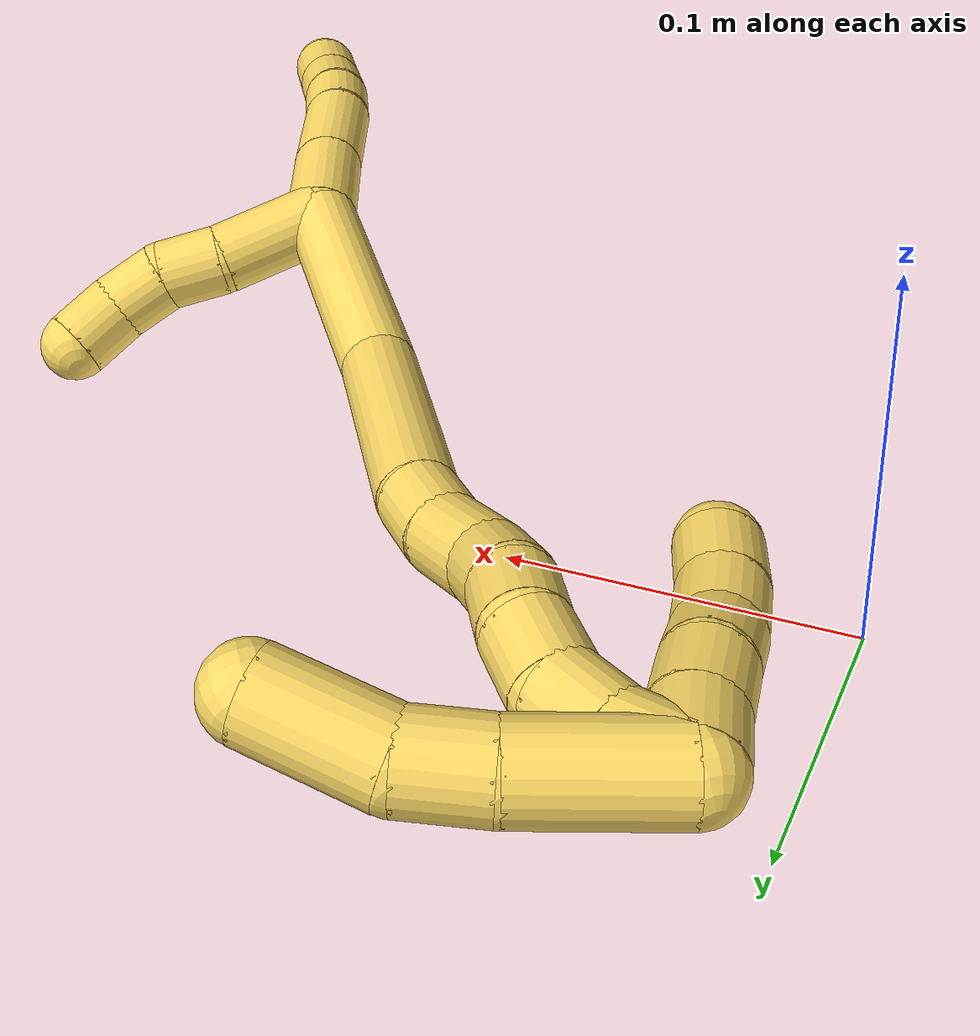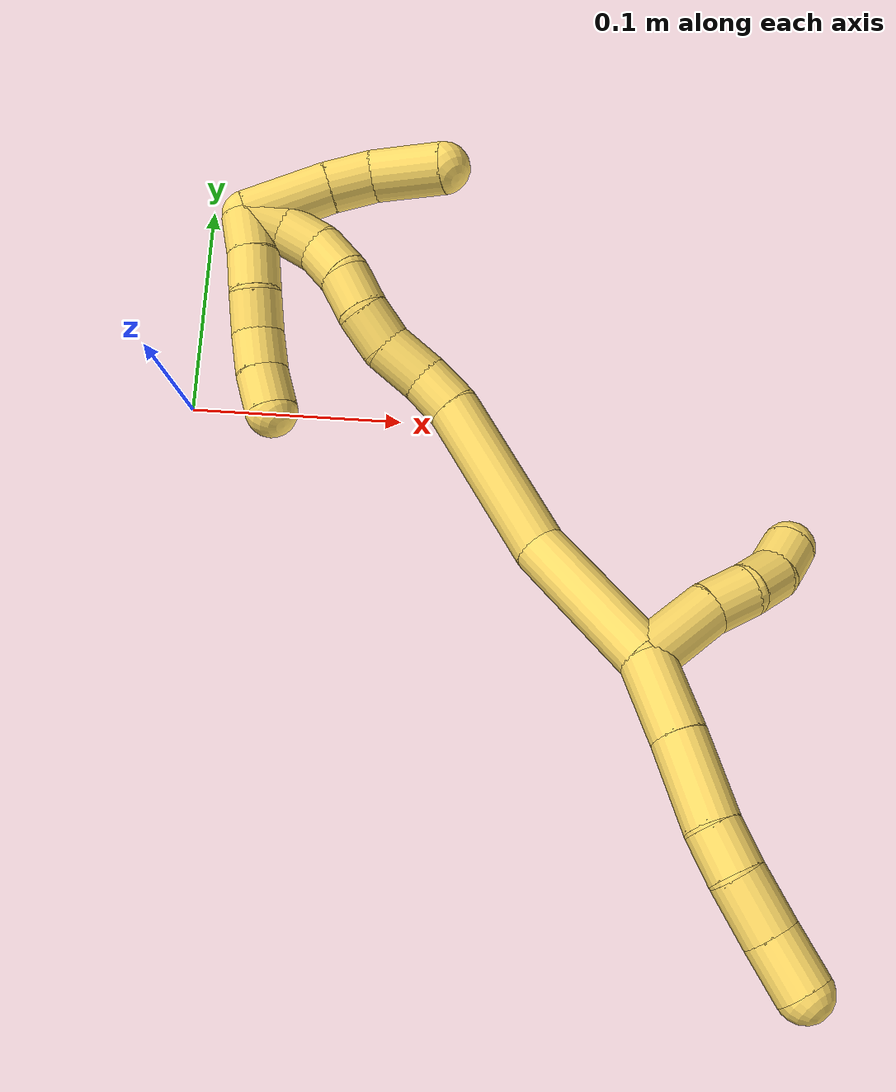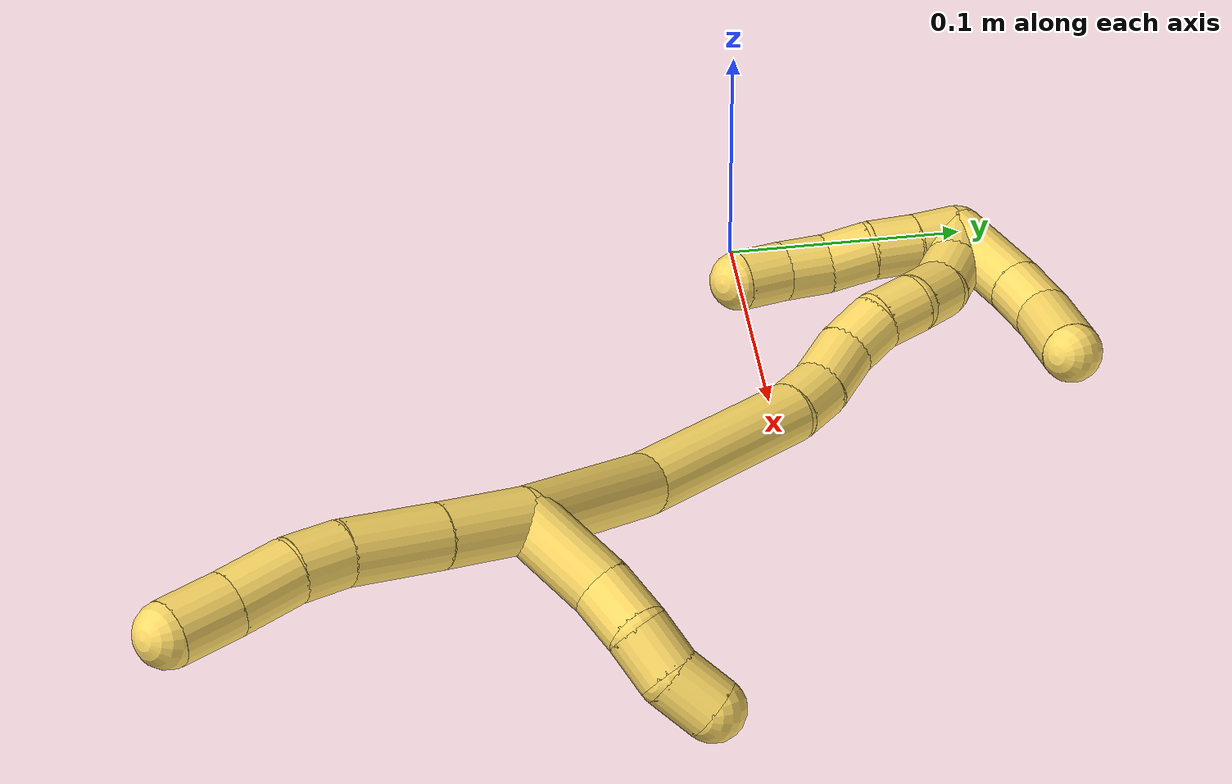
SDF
<sdf version="1.7">
 <world name="default">
  <model name="5">
   <static>0</static>
   <link name="5">
    <collision name="collision-cylinder-e_1_2_8">
     <pose>-0.003518 -0.005043 0.017631 0.278567 -0.189536 -0.02665</pose>
     <geometry><cylinder><radius>0.0125</radius><length>0.037346</length></cylinder></geometry>
     <surface>
      <friction><ode><mu>1.16</mu><mu2>1.16</mu2><slip1>0</slip1><slip2>0</slip2></ode></friction>
      <contact><ode><kp>1e+06</kp><kd>1</kd><max_vel>0</max_vel><min_depth>0.001</min_depth></ode></contact>
     </surface>
    </collision>
    <visual name="visual-cylinder-e_1_2_8">
     <pose>-0.003518 -0.005043 0.017631 0.278567 -0.189536 -0.02665</pose>
     <geometry><cylinder><radius>0.0125</radius><length>0.037346</length></cylinder></geometry>
     <material><ambient>1 0.858824 0.4 1</ambient></material>
    </visual>
    <collision name="collision-cylinder-e_2_8_9">
     <pose>-0.011197 -0.015855 0.053796 0.301799 -0.211174 -0.032227</pose>
     <geometry><cylinder><radius>0.0125</radius><length>0.039703</length></cylinder></geometry>
     <surface>
      <friction><ode><mu>1.16</mu><mu2>1.16</mu2><slip1>0</slip1><slip2>0</slip2></ode></friction>
      <contact><ode><kp>1e+06</kp><kd>1</kd><max_vel>0</max_vel><min_depth>0.001</min_depth></ode></contact>
     </surface>
    </collision>
    <visual name="visual-cylinder-e_2_8_9">
     <pose>-0.011197 -0.015855 0.053796 0.301799 -0.211174 -0.032227</pose>
     <geometry><cylinder><radius>0.0125</radius><length>0.039703</length></cylinder></geometry>
     <material><ambient>1 0.858824 0.4 1</ambient></material>
    </visual>
    <collision name="collision-cylinder-e_3_9_10">
     <pose>-0.016152 -0.024972 0.082286 0.32432 -0.075433 -0.012346</pose>
     <geometry><cylinder><radius>0.0125</radius><length>0.021069</length></cylinder></geometry>
     <surface>
      <friction><ode><mu>1.16</mu><mu2>1.16</mu2><slip1>0</slip1><slip2>0</slip2></ode></friction>
      <contact><ode><kp>1e+06</kp><kd>1</kd><max_vel>0</max_vel><min_depth>0.001</min_depth></ode></contact>
     </surface>
    </collision>
    <visual name="visual-cylinder-e_3_9_10">
     <pose>-0.016152 -0.024972 0.082286 0.32432 -0.075433 -0.012346</pose>
     <geometry><cylinder><radius>0.0125</radius><length>0.021069</length></cylinder></geometry>
     <material><ambient>1 0.858824 0.4 1</ambient></material>
    </visual>
    <collision name="collision-cylinder-e_4_10_11">
     <pose>-0.016188 -0.033778 0.104458 0.420239 0.056591 0.012072</pose>
     <geometry><cylinder><radius>0.0125</radius><length>0.026802</length></cylinder></geometry>
     <surface>
      <friction><ode><mu>1.16</mu><mu2>1.16</mu2><slip1>0</slip1><slip2>0</slip2></ode></friction>
      <contact><ode><kp>1e+06</kp><kd>1</kd><max_vel>0</max_vel><min_depth>0.001</min_depth></ode></contact>
     </surface>
    </collision>
    <visual name="visual-cylinder-e_4_10_11">
     <pose>-0.016188 -0.033778 0.104458 0.420239 0.056591 0.012072</pose>
     <geometry><cylinder><radius>0.0125</radius><length>0.026802</length></cylinder></geometry>
     <material><ambient>1 0.858824 0.4 1</ambient></material>
    </visual>
    <collision name="collision-cylinder-e_5_11_6">
     <pose>-0.014943 -0.043607 0.128417 0.356291 0.038818 0.00699</pose>
     <geometry><cylinder><radius>0.0125</radius><length>0.025081</length></cylinder></geometry>
     <surface>
      <friction><ode><mu>1.16</mu><mu2>1.16</mu2><slip1>0</slip1><slip2>0</slip2></ode></friction>
      <contact><ode><kp>1e+06</kp><kd>1</kd><max_vel>0</max_vel><min_depth>0.001</min_depth></ode></contact>
     </surface>
    </collision>
    <visual name="visual-cylinder-e_5_11_6">
     <pose>-0.014943 -0.043607 0.128417 0.356291 0.038818 0.00699</pose>
     <geometry><cylinder><radius>0.0125</radius><length>0.025081</length></cylinder></geometry>
     <material><ambient>1 0.858824 0.4 1</ambient></material>
    </visual>
    <collision name="collision-cylinder-e_1_2_12">
     <pose>0.018549 0.004399 -0.002629 -2.10947 1.30124 -1.86056</pose>
     <geometry><cylinder><radius>0.0125</radius><length>0.038488</length></cylinder></geometry>
     <surface>
      <friction><ode><mu>1.16</mu><mu2>1.16</mu2><slip1>0</slip1><slip2>0</slip2></ode></friction>
      <contact><ode><kp>1e+06</kp><kd>1</kd><max_vel>0</max_vel><min_depth>0.001</min_depth></ode></contact>
     </surface>
    </collision>
    <visual name="visual-cylinder-e_1_2_12">
     <pose>0.018549 0.004399 -0.002629 -2.10947 1.30124 -1.86056</pose>
     <geometry><cylinder><radius>0.0125</radius><length>0.038488</length></cylinder></geometry>
     <material><ambient>1 0.858824 0.4 1</ambient></material>
    </visual>
    <collision name="collision-cylinder-e_2_12_13">
     <pose>0.047503 0.011117 -0.00453 -1.26682 1.34128 -1.05499</pose>
     <geometry><cylinder><radius>0.0125</radius><length>0.02137</length></cylinder></geometry>
     <surface>
      <friction><ode><mu>1.16</mu><mu2>1.16</mu2><slip1>0</slip1><slip2>0</slip2></ode></friction>
      <contact><ode><kp>1e+06</kp><kd>1</kd><max_vel>0</max_vel><min_depth>0.001</min_depth></ode></contact>
     </surface>
    </collision>
    <visual name="visual-cylinder-e_2_12_13">
     <pose>0.047503 0.011117 -0.00453 -1.26682 1.34128 -1.05499</pose>
     <geometry><cylinder><radius>0.0125</radius><length>0.02137</length></cylinder></geometry>
     <material><ambient>1 0.858824 0.4 1</ambient></material>
    </visual>
    <collision name="collision-cylinder-e_3_13_14">
     <pose>0.067823 0.013184 -0.005264 2.97042 1.4223 2.94307</pose>
     <geometry><cylinder><radius>0.0125</radius><length>0.020051</length></cylinder></geometry>
     <surface>
      <friction><ode><mu>1.16</mu><mu2>1.16</mu2><slip1>0</slip1><slip2>0</slip2></ode></friction>
      <contact><ode><kp>1e+06</kp><kd>1</kd><max_vel>0</max_vel><min_depth>0.001</min_depth></ode></contact>
     </surface>
    </collision>
    <visual name="visual-cylinder-e_3_13_14">
     <pose>0.067823 0.013184 -0.005264 2.97042 1.4223 2.94307</pose>
     <geometry><cylinder><radius>0.0125</radius><length>0.020051</length></cylinder></geometry>
     <material><ambient>1 0.858824 0.4 1</ambient></material>
    </visual>
    <collision name="collision-cylinder-e_4_14_5">
     <pose>0.086699 0.013765 -0.01119 -2.95701 1.10174 -2.8425</pose>
     <geometry><cylinder><radius>0.0125</radius><length>0.020091</length></cylinder></geometry>
     <surface>
      <friction><ode><mu>1.16</mu><mu2>1.16</mu2><slip1>0</slip1><slip2>0</slip2></ode></friction>
      <contact><ode><kp>1e+06</kp><kd>1</kd><max_vel>0</max_vel><min_depth>0.001</min_depth></ode></contact>
     </surface>
    </collision>
    <visual name="visual-cylinder-e_4_14_5">
     <pose>0.086699 0.013765 -0.01119 -2.95701 1.10174 -2.8425</pose>
     <geometry><cylinder><radius>0.0125</radius><length>0.020091</length></cylinder></geometry>
     <material><ambient>1 0.858824 0.4 1</ambient></material>
    </visual>
    <collision name="collision-cylinder-e_1_2_15">
     <pose>-0.000599 -0.001299 -0.037877 3.10731 -0.015809 -0.86419</pose>
     <geometry><cylinder><radius>0.0125</radius><length>0.075807</length></cylinder></geometry>
     <surface>
      <friction><ode><mu>1.16</mu><mu2>1.16</mu2><slip1>0</slip1><slip2>0</slip2></ode></friction>
      <contact><ode><kp>1e+06</kp><kd>1</kd><max_vel>0</max_vel><min_depth>0.001</min_depth></ode></contact>
     </surface>
    </collision>
    <visual name="visual-cylinder-e_1_2_15">
     <pose>-0.000599 -0.001299 -0.037877 3.10731 -0.015809 -0.86419</pose>
     <geometry><cylinder><radius>0.0125</radius><length>0.075807</length></cylinder></geometry>
     <material><ambient>1 0.858824 0.4 1</ambient></material>
    </visual>
    <collision name="collision-cylinder-e_2_15_16">
     <pose>-0.002598 0.009647 -0.113647 -2.82904 -0.035139 0.222127</pose>
     <geometry><cylinder><radius>0.0125</radius><length>0.079695</length></cylinder></geometry>
     <surface>
      <friction><ode><mu>1.16</mu><mu2>1.16</mu2><slip1>0</slip1><slip2>0</slip2></ode></friction>
      <contact><ode><kp>1e+06</kp><kd>1</kd><max_vel>0</max_vel><min_depth>0.001</min_depth></ode></contact>
     </surface>
    </collision>
    <visual name="visual-cylinder-e_2_15_16">
     <pose>-0.002598 0.009647 -0.113647 -2.82904 -0.035139 0.222127</pose>
     <geometry><cylinder><radius>0.0125</radius><length>0.079695</length></cylinder></geometry>
     <material><ambient>1 0.858824 0.4 1</ambient></material>
    </visual>
    <collision name="collision-cylinder-e_3_16_17">
     <pose>-0.006321 0.024223 -0.161141 -2.90347 -0.230934 1.53988</pose>
     <geometry><cylinder><radius>0.0125</radius><length>0.020298</length></cylinder></geometry>
     <surface>
      <friction><ode><mu>1.16</mu><mu2>1.16</mu2><slip1>0</slip1><slip2>0</slip2></ode></friction>
      <contact><ode><kp>1e+06</kp><kd>1</kd><max_vel>0</max_vel><min_depth>0.001</min_depth></ode></contact>
     </surface>
    </collision>
    <visual name="visual-cylinder-e_3_16_17">
     <pose>-0.006321 0.024223 -0.161141 -2.90347 -0.230934 1.53988</pose>
     <geometry><cylinder><radius>0.0125</radius><length>0.020298</length></cylinder></geometry>
     <material><ambient>1 0.858824 0.4 1</ambient></material>
    </visual>
    <collision name="collision-cylinder-e_4_17_18">
     <pose>-0.013676 0.030015 -0.181069 -2.81816 -0.432762 1.86469</pose>
     <geometry><cylinder><radius>0.0125</radius><length>0.023996</length></cylinder></geometry>
     <surface>
      <friction><ode><mu>1.16</mu><mu2>1.16</mu2><slip1>0</slip1><slip2>0</slip2></ode></friction>
      <contact><ode><kp>1e+06</kp><kd>1</kd><max_vel>0</max_vel><min_depth>0.001</min_depth></ode></contact>
     </surface>
    </collision>
    <visual name="visual-cylinder-e_4_17_18">
     <pose>-0.013676 0.030015 -0.181069 -2.81816 -0.432762 1.86469</pose>
     <geometry><cylinder><radius>0.0125</radius><length>0.023996</length></cylinder></geometry>
     <material><ambient>1 0.858824 0.4 1</ambient></material>
    </visual>
    <collision name="collision-cylinder-e_5_18_19">
     <pose>-0.021202 0.038543 -0.199665 -2.59186 -0.251769 0.843657</pose>
     <geometry><cylinder><radius>0.0125</radius><length>0.020028</length></cylinder></geometry>
     <surface>
      <friction><ode><mu>1.16</mu><mu2>1.16</mu2><slip1>0</slip1><slip2>0</slip2></ode></friction>
      <contact><ode><kp>1e+06</kp><kd>1</kd><max_vel>0</max_vel><min_depth>0.001</min_depth></ode></contact>
     </surface>
    </collision>
    <visual name="visual-cylinder-e_5_18_19">
     <pose>-0.021202 0.038543 -0.199665 -2.59186 -0.251769 0.843657</pose>
     <geometry><cylinder><radius>0.0125</radius><length>0.020028</length></cylinder></geometry>
     <material><ambient>1 0.858824 0.4 1</ambient></material>
    </visual>
    <collision name="collision-cylinder-e_6_19_20">
     <pose>-0.023913 0.047695 -0.217155 -2.72449 -0.021486 0.101445</pose>
     <geometry><cylinder><radius>0.0125</radius><length>0.020174</length></cylinder></geometry>
     <surface>
      <friction><ode><mu>1.16</mu><mu2>1.16</mu2><slip1>0</slip1><slip2>0</slip2></ode></friction>
      <contact><ode><kp>1e+06</kp><kd>1</kd><max_vel>0</max_vel><min_depth>0.001</min_depth></ode></contact>
     </surface>
    </collision>
    <visual name="visual-cylinder-e_6_19_20">
     <pose>-0.023913 0.047695 -0.217155 -2.72449 -0.021486 0.101445</pose>
     <geometry><cylinder><radius>0.0125</radius><length>0.020174</length></cylinder></geometry>
     <material><ambient>1 0.858824 0.4 1</ambient></material>
    </visual>
    <collision name="collision-cylinder-e_7_20_21">
     <pose>-0.025257 0.053173 -0.236213 -3.00098 -0.112936 1.3528</pose>
     <geometry><cylinder><radius>0.0125</radius><length>0.02</length></cylinder></geometry>
     <surface>
      <friction><ode><mu>1.16</mu><mu2>1.16</mu2><slip1>0</slip1><slip2>0</slip2></ode></friction>
      <contact><ode><kp>1e+06</kp><kd>1</kd><max_vel>0</max_vel><min_depth>0.001</min_depth></ode></contact>
     </surface>
    </collision>
    <visual name="visual-cylinder-e_7_20_21">
     <pose>-0.025257 0.053173 -0.236213 -3.00098 -0.112936 1.3528</pose>
     <geometry><cylinder><radius>0.0125</radius><length>0.02</length></cylinder></geometry>
     <material><ambient>1 0.858824 0.4 1</ambient></material>
    </visual>
    <collision name="collision-cylinder-e_8_21_22">
     <pose>-0.030796 0.05527 -0.254999 -3.0631 -0.456902 2.80697</pose>
     <geometry><cylinder><radius>0.0125</radius><length>0.020002</length></cylinder></geometry>
     <surface>
      <friction><ode><mu>1.16</mu><mu2>1.16</mu2><slip1>0</slip1><slip2>0</slip2></ode></friction>
      <contact><ode><kp>1e+06</kp><kd>1</kd><max_vel>0</max_vel><min_depth>0.001</min_depth></ode></contact>
     </surface>
    </collision>
    <visual name="visual-cylinder-e_8_21_22">
     <pose>-0.030796 0.05527 -0.254999 -3.0631 -0.456902 2.80697</pose>
     <geometry><cylinder><radius>0.0125</radius><length>0.020002</length></cylinder></geometry>
     <material><ambient>1 0.858824 0.4 1</ambient></material>
    </visual>
    <collision name="collision-cylinder-e_9_22_1">
     <pose>-0.041656 0.056289 -0.271584 -3.10037 -0.700661 3.02888</pose>
     <geometry><cylinder><radius>0.0125</radius><length>0.02</length></cylinder></geometry>
     <surface>
      <friction><ode><mu>1.16</mu><mu2>1.16</mu2><slip1>0</slip1><slip2>0</slip2></ode></friction>
      <contact><ode><kp>1e+06</kp><kd>1</kd><max_vel>0</max_vel><min_depth>0.001</min_depth></ode></contact>
     </surface>
    </collision>
    <visual name="visual-cylinder-e_9_22_1">
     <pose>-0.041656 0.056289 -0.271584 -3.10037 -0.700661 3.02888</pose>
     <geometry><cylinder><radius>0.0125</radius><length>0.02</length></cylinder></geometry>
     <material><ambient>1 0.858824 0.4 1</ambient></material>
    </visual>
    <collision name="collision-cylinder-e_1_1_23">
     <pose>-0.050517 0.051579 -0.270919 0.544205 -0.243765 -0.068328</pose>
     <geometry><cylinder><radius>0.0125</radius><length>0.02</length></cylinder></geometry>
     <surface>
      <friction><ode><mu>1.16</mu><mu2>1.16</mu2><slip1>0</slip1><slip2>0</slip2></ode></friction>
      <contact><ode><kp>1e+06</kp><kd>1</kd><max_vel>0</max_vel><min_depth>0.001</min_depth></ode></contact>
     </surface>
    </collision>
    <visual name="visual-cylinder-e_1_1_23">
     <pose>-0.050517 0.051579 -0.270919 0.544205 -0.243765 -0.068328</pose>
     <geometry><cylinder><radius>0.0125</radius><length>0.02</length></cylinder></geometry>
     <material><ambient>1 0.858824 0.4 1</ambient></material>
    </visual>
    <collision name="collision-cylinder-e_2_23_24">
     <pose>-0.0561 0.041279 -0.254736 0.589978 -0.322594 -0.0988</pose>
     <geometry><cylinder><radius>0.0125</radius><length>0.02</length></cylinder></geometry>
     <surface>
      <friction><ode><mu>1.16</mu><mu2>1.16</mu2><slip1>0</slip1><slip2>0</slip2></ode></friction>
      <contact><ode><kp>1e+06</kp><kd>1</kd><max_vel>0</max_vel><min_depth>0.001</min_depth></ode></contact>
     </surface>
    </collision>
    <visual name="visual-cylinder-e_2_23_24">
     <pose>-0.0561 0.041279 -0.254736 0.589978 -0.322594 -0.0988</pose>
     <geometry><cylinder><radius>0.0125</radius><length>0.02</length></cylinder></geometry>
     <material><ambient>1 0.858824 0.4 1</ambient></material>
    </visual>
    <collision name="collision-cylinder-e_3_24_25">
     <pose>-0.061637 0.02926 -0.239859 0.766933 -0.238854 -0.096748</pose>
     <geometry><cylinder><radius>0.0125</radius><length>0.02</length></cylinder></geometry>
     <surface>
      <friction><ode><mu>1.16</mu><mu2>1.16</mu2><slip1>0</slip1><slip2>0</slip2></ode></friction>
      <contact><ode><kp>1e+06</kp><kd>1</kd><max_vel>0</max_vel><min_depth>0.001</min_depth></ode></contact>
     </surface>
    </collision>
    <visual name="visual-cylinder-e_3_24_25">
     <pose>-0.061637 0.02926 -0.239859 0.766933 -0.238854 -0.096748</pose>
     <geometry><cylinder><radius>0.0125</radius><length>0.02</length></cylinder></geometry>
     <material><ambient>1 0.858824 0.4 1</ambient></material>
    </visual>
    <collision name="collision-cylinder-e_4_25_26">
     <pose>-0.066795 0.017663 -0.224578 0.530003 -0.283007 -0.077282</pose>
     <geometry><cylinder><radius>0.0125</radius><length>0.02</length></cylinder></geometry>
     <surface>
      <friction><ode><mu>1.16</mu><mu2>1.16</mu2><slip1>0</slip1><slip2>0</slip2></ode></friction>
      <contact><ode><kp>1e+06</kp><kd>1</kd><max_vel>0</max_vel><min_depth>0.001</min_depth></ode></contact>
     </surface>
    </collision>
    <visual name="visual-cylinder-e_4_25_26">
     <pose>-0.066795 0.017663 -0.224578 0.530003 -0.283007 -0.077282</pose>
     <geometry><cylinder><radius>0.0125</radius><length>0.02</length></cylinder></geometry>
     <material><ambient>1 0.858824 0.4 1</ambient></material>
    </visual>
    <collision name="collision-cylinder-e_5_26_4">
     <pose>-0.071524 0.00864 -0.207413 0.438933 -0.194855 -0.043595</pose>
     <geometry><cylinder><radius>0.0125</radius><length>0.02</length></cylinder></geometry>
     <surface>
      <friction><ode><mu>1.16</mu><mu2>1.16</mu2><slip1>0</slip1><slip2>0</slip2></ode></friction>
      <contact><ode><kp>1e+06</kp><kd>1</kd><max_vel>0</max_vel><min_depth>0.001</min_depth></ode></contact>
     </surface>
    </collision>
    <visual name="visual-cylinder-e_5_26_4">
     <pose>-0.071524 0.00864 -0.207413 0.438933 -0.194855 -0.043595</pose>
     <geometry><cylinder><radius>0.0125</radius><length>0.02</length></cylinder></geometry>
     <material><ambient>1 0.858824 0.4 1</ambient></material>
    </visual>
    <collision name="collision-cylinder-e_1_1_27">
     <pose>-0.029568 0.064724 -0.273619 -0.966811 1.08167 -0.610804</pose>
     <geometry><cylinder><radius>0.0125</radius><length>0.041994</length></cylinder></geometry>
     <surface>
      <friction><ode><mu>1.16</mu><mu2>1.16</mu2><slip1>0</slip1><slip2>0</slip2></ode></friction>
      <contact><ode><kp>1e+06</kp><kd>1</kd><max_vel>0</max_vel><min_depth>0.001</min_depth></ode></contact>
     </surface>
    </collision>
    <visual name="visual-cylinder-e_1_1_27">
     <pose>-0.029568 0.064724 -0.273619 -0.966811 1.08167 -0.610804</pose>
     <geometry><cylinder><radius>0.0125</radius><length>0.041994</length></cylinder></geometry>
     <material><ambient>1 0.858824 0.4 1</ambient></material>
    </visual>
    <collision name="collision-cylinder-e_2_27_28">
     <pose>-0.001347 0.076924 -0.26379 -0.767923 1.02566 -0.44737</pose>
     <geometry><cylinder><radius>0.0125</radius><length>0.022657</length></cylinder></geometry>
     <surface>
      <friction><ode><mu>1.16</mu><mu2>1.16</mu2><slip1>0</slip1><slip2>0</slip2></ode></friction>
      <contact><ode><kp>1e+06</kp><kd>1</kd><max_vel>0</max_vel><min_depth>0.001</min_depth></ode></contact>
     </surface>
    </collision>
    <visual name="visual-cylinder-e_2_27_28">
     <pose>-0.001347 0.076924 -0.26379 -0.767923 1.02566 -0.44737</pose>
     <geometry><cylinder><radius>0.0125</radius><length>0.022657</length></cylinder></geometry>
     <material><ambient>1 0.858824 0.4 1</ambient></material>
    </visual>
    <collision name="collision-cylinder-e_3_28_3">
     <pose>0.020089 0.087933 -0.248324 -0.552342 0.72713 -0.214835</pose>
     <geometry><cylinder><radius>0.0125</radius><length>0.035349</length></cylinder></geometry>
     <surface>
      <friction><ode><mu>1.16</mu><mu2>1.16</mu2><slip1>0</slip1><slip2>0</slip2></ode></friction>
      <contact><ode><kp>1e+06</kp><kd>1</kd><max_vel>0</max_vel><min_depth>0.001</min_depth></ode></contact>
     </surface>
    </collision>
    <visual name="visual-cylinder-e_3_28_3">
     <pose>0.020089 0.087933 -0.248324 -0.552342 0.72713 -0.214835</pose>
     <geometry><cylinder><radius>0.0125</radius><length>0.035349</length></cylinder></geometry>
     <material><ambient>1 0.858824 0.4 1</ambient></material>
    </visual>
    <collision name="collision-sphere-3">
     <pose>0.031837 0.094861 -0.237083 0 -0 0</pose>
     <geometry><sphere><radius>0.0125</radius></sphere></geometry>
     <surface>
      <friction><ode><mu>1.16</mu><mu2>1.16</mu2><slip1>0</slip1><slip2>0</slip2></ode></friction>
      <contact><ode><kp>1e+06</kp><kd>1</kd><max_vel>0</max_vel><min_depth>0.001</min_depth></ode></contact>
     </surface>
    </collision>
    <visual name="visual-sphere-3">
     <pose>0.031837 0.094861 -0.237083 0 -0 0</pose>
     <geometry><sphere><radius>0.0125</radius></sphere></geometry>
     <material><ambient>1 0.858824 0.4 1</ambient></material>
    </visual>
    <collision name="collision-sphere-28">
     <pose>0.00834 0.081005 -0.259565 0 -0 0</pose>
     <geometry><sphere><radius>0.0125</radius></sphere></geometry>
     <surface>
      <friction><ode><mu>1.16</mu><mu2>1.16</mu2><slip1>0</slip1><slip2>0</slip2></ode></friction>
      <contact><ode><kp>1e+06</kp><kd>1</kd><max_vel>0</max_vel><min_depth>0.001</min_depth></ode></contact>
     </surface>
    </collision>
    <visual name="visual-sphere-28">
     <pose>0.00834 0.081005 -0.259565 0 -0 0</pose>
     <geometry><sphere><radius>0.0125</radius></sphere></geometry>
     <material><ambient>1 0.858824 0.4 1</ambient></material>
    </visual>
    <collision name="collision-sphere-27">
     <pose>-0.011033 0.072844 -0.268016 0 -0 0</pose>
     <geometry><sphere><radius>0.0125</radius></sphere></geometry>
     <surface>
      <friction><ode><mu>1.16</mu><mu2>1.16</mu2><slip1>0</slip1><slip2>0</slip2></ode></friction>
      <contact><ode><kp>1e+06</kp><kd>1</kd><max_vel>0</max_vel><min_depth>0.001</min_depth></ode></contact>
     </surface>
    </collision>
    <visual name="visual-sphere-27">
     <pose>-0.011033 0.072844 -0.268016 0 -0 0</pose>
     <geometry><sphere><radius>0.0125</radius></sphere></geometry>
     <material><ambient>1 0.858824 0.4 1</ambient></material>
    </visual>
    <collision name="collision-sphere-4">
     <pose>-0.07346 0.00447 -0.198532 0 -0 0</pose>
     <geometry><sphere><radius>0.0125</radius></sphere></geometry>
     <surface>
      <friction><ode><mu>1.16</mu><mu2>1.16</mu2><slip1>0</slip1><slip2>0</slip2></ode></friction>
      <contact><ode><kp>1e+06</kp><kd>1</kd><max_vel>0</max_vel><min_depth>0.001</min_depth></ode></contact>
     </surface>
    </collision>
    <visual name="visual-sphere-4">
     <pose>-0.07346 0.00447 -0.198532 0 -0 0</pose>
     <geometry><sphere><radius>0.0125</radius></sphere></geometry>
     <material><ambient>1 0.858824 0.4 1</ambient></material>
    </visual>
    <collision name="collision-sphere-26">
     <pose>-0.069587 0.012809 -0.216294 0 -0 0</pose>
     <geometry><sphere><radius>0.0125</radius></sphere></geometry>
     <surface>
      <friction><ode><mu>1.16</mu><mu2>1.16</mu2><slip1>0</slip1><slip2>0</slip2></ode></friction>
      <contact><ode><kp>1e+06</kp><kd>1</kd><max_vel>0</max_vel><min_depth>0.001</min_depth></ode></contact>
     </surface>
    </collision>
    <visual name="visual-sphere-26">
     <pose>-0.069587 0.012809 -0.216294 0 -0 0</pose>
     <geometry><sphere><radius>0.0125</radius></sphere></geometry>
     <material><ambient>1 0.858824 0.4 1</ambient></material>
    </visual>
    <collision name="collision-sphere-25">
     <pose>-0.064003 0.022518 -0.232863 0 -0 0</pose>
     <geometry><sphere><radius>0.0125</radius></sphere></geometry>
     <surface>
      <friction><ode><mu>1.16</mu><mu2>1.16</mu2><slip1>0</slip1><slip2>0</slip2></ode></friction>
      <contact><ode><kp>1e+06</kp><kd>1</kd><max_vel>0</max_vel><min_depth>0.001</min_depth></ode></contact>
     </surface>
    </collision>
    <visual name="visual-sphere-25">
     <pose>-0.064003 0.022518 -0.232863 0 -0 0</pose>
     <geometry><sphere><radius>0.0125</radius></sphere></geometry>
     <material><ambient>1 0.858824 0.4 1</ambient></material>
    </visual>
    <collision name="collision-sphere-24">
     <pose>-0.059271 0.036002 -0.246855 0 -0 0</pose>
     <geometry><sphere><radius>0.0125</radius></sphere></geometry>
     <surface>
      <friction><ode><mu>1.16</mu><mu2>1.16</mu2><slip1>0</slip1><slip2>0</slip2></ode></friction>
      <contact><ode><kp>1e+06</kp><kd>1</kd><max_vel>0</max_vel><min_depth>0.001</min_depth></ode></contact>
     </surface>
    </collision>
    <visual name="visual-sphere-24">
     <pose>-0.059271 0.036002 -0.246855 0 -0 0</pose>
     <geometry><sphere><radius>0.0125</radius></sphere></geometry>
     <material><ambient>1 0.858824 0.4 1</ambient></material>
    </visual>
    <collision name="collision-sphere-23">
     <pose>-0.05293 0.046555 -0.262617 0 -0 0</pose>
     <geometry><sphere><radius>0.0125</radius></sphere></geometry>
     <surface>
      <friction><ode><mu>1.16</mu><mu2>1.16</mu2><slip1>0</slip1><slip2>0</slip2></ode></friction>
      <contact><ode><kp>1e+06</kp><kd>1</kd><max_vel>0</max_vel><min_depth>0.001</min_depth></ode></contact>
     </surface>
    </collision>
    <visual name="visual-sphere-23">
     <pose>-0.05293 0.046555 -0.262617 0 -0 0</pose>
     <geometry><sphere><radius>0.0125</radius></sphere></geometry>
     <material><ambient>1 0.858824 0.4 1</ambient></material>
    </visual>
    <collision name="collision-sphere-1">
     <pose>-0.048103 0.056604 -0.279222 0 -0 0</pose>
     <geometry><sphere><radius>0.0125</radius></sphere></geometry>
     <surface>
      <friction><ode><mu>1.16</mu><mu2>1.16</mu2><slip1>0</slip1><slip2>0</slip2></ode></friction>
      <contact><ode><kp>1e+06</kp><kd>1</kd><max_vel>0</max_vel><min_depth>0.001</min_depth></ode></contact>
     </surface>
    </collision>
    <visual name="visual-sphere-1">
     <pose>-0.048103 0.056604 -0.279222 0 -0 0</pose>
     <geometry><sphere><radius>0.0125</radius></sphere></geometry>
     <material><ambient>1 0.858824 0.4 1</ambient></material>
    </visual>
    <collision name="collision-sphere-22">
     <pose>-0.035208 0.055974 -0.263946 0 -0 0</pose>
     <geometry><sphere><radius>0.0125</radius></sphere></geometry>
     <surface>
      <friction><ode><mu>1.16</mu><mu2>1.16</mu2><slip1>0</slip1><slip2>0</slip2></ode></friction>
      <contact><ode><kp>1e+06</kp><kd>1</kd><max_vel>0</max_vel><min_depth>0.001</min_depth></ode></contact>
     </surface>
    </collision>
    <visual name="visual-sphere-22">
     <pose>-0.035208 0.055974 -0.263946 0 -0 0</pose>
     <geometry><sphere><radius>0.0125</radius></sphere></geometry>
     <material><ambient>1 0.858824 0.4 1</ambient></material>
    </visual>
    <collision name="collision-sphere-21">
     <pose>-0.026384 0.054566 -0.246051 0 -0 0</pose>
     <geometry><sphere><radius>0.0125</radius></sphere></geometry>
     <surface>
      <friction><ode><mu>1.16</mu><mu2>1.16</mu2><slip1>0</slip1><slip2>0</slip2></ode></friction>
      <contact><ode><kp>1e+06</kp><kd>1</kd><max_vel>0</max_vel><min_depth>0.001</min_depth></ode></contact>
     </surface>
    </collision>
    <visual name="visual-sphere-21">
     <pose>-0.026384 0.054566 -0.246051 0 -0 0</pose>
     <geometry><sphere><radius>0.0125</radius></sphere></geometry>
     <material><ambient>1 0.858824 0.4 1</ambient></material>
    </visual>
    <collision name="collision-sphere-6">
     <pose>-0.014457 -0.047978 0.140162 0 -0 0</pose>
     <geometry><sphere><radius>0.0125</radius></sphere></geometry>
     <surface>
      <friction><ode><mu>1.16</mu><mu2>1.16</mu2><slip1>0</slip1><slip2>0</slip2></ode></friction>
      <contact><ode><kp>1e+06</kp><kd>1</kd><max_vel>0</max_vel><min_depth>0.001</min_depth></ode></contact>
     </surface>
    </collision>
    <visual name="visual-sphere-6">
     <pose>-0.014457 -0.047978 0.140162 0 -0 0</pose>
     <geometry><sphere><radius>0.0125</radius></sphere></geometry>
     <material><ambient>1 0.858824 0.4 1</ambient></material>
    </visual>
    <collision name="collision-sphere-11">
     <pose>-0.01543 -0.039236 0.116673 0 -0 0</pose>
     <geometry><sphere><radius>0.0125</radius></sphere></geometry>
     <surface>
      <friction><ode><mu>1.16</mu><mu2>1.16</mu2><slip1>0</slip1><slip2>0</slip2></ode></friction>
      <contact><ode><kp>1e+06</kp><kd>1</kd><max_vel>0</max_vel><min_depth>0.001</min_depth></ode></contact>
     </surface>
    </collision>
    <visual name="visual-sphere-11">
     <pose>-0.01543 -0.039236 0.116673 0 -0 0</pose>
     <geometry><sphere><radius>0.0125</radius></sphere></geometry>
     <material><ambient>1 0.858824 0.4 1</ambient></material>
    </visual>
    <collision name="collision-sphere-10">
     <pose>-0.016946 -0.028319 0.092243 0 -0 0</pose>
     <geometry><sphere><radius>0.0125</radius></sphere></geometry>
     <surface>
      <friction><ode><mu>1.16</mu><mu2>1.16</mu2><slip1>0</slip1><slip2>0</slip2></ode></friction>
      <contact><ode><kp>1e+06</kp><kd>1</kd><max_vel>0</max_vel><min_depth>0.001</min_depth></ode></contact>
     </surface>
    </collision>
    <visual name="visual-sphere-10">
     <pose>-0.016946 -0.028319 0.092243 0 -0 0</pose>
     <geometry><sphere><radius>0.0125</radius></sphere></geometry>
     <material><ambient>1 0.858824 0.4 1</ambient></material>
    </visual>
    <collision name="collision-sphere-9">
     <pose>-0.015358 -0.021624 0.072329 0 -0 0</pose>
     <geometry><sphere><radius>0.0125</radius></sphere></geometry>
     <surface>
      <friction><ode><mu>1.16</mu><mu2>1.16</mu2><slip1>0</slip1><slip2>0</slip2></ode></friction>
      <contact><ode><kp>1e+06</kp><kd>1</kd><max_vel>0</max_vel><min_depth>0.001</min_depth></ode></contact>
     </surface>
    </collision>
    <visual name="visual-sphere-9">
     <pose>-0.015358 -0.021624 0.072329 0 -0 0</pose>
     <geometry><sphere><radius>0.0125</radius></sphere></geometry>
     <material><ambient>1 0.858824 0.4 1</ambient></material>
    </visual>
    <collision name="collision-sphere-2">
     <geometry><sphere><radius>0.0125</radius></sphere></geometry>
     <surface>
      <friction><ode><mu>1.16</mu><mu2>1.16</mu2><slip1>0</slip1><slip2>0</slip2></ode></friction>
      <contact><ode><kp>1e+06</kp><kd>1</kd><max_vel>0</max_vel><min_depth>0.001</min_depth></ode></contact>
     </surface>
    </collision>
    <visual name="visual-sphere-2">
     <geometry><sphere><radius>0.0125</radius></sphere></geometry>
     <material><ambient>1 0.858824 0.4 1</ambient></material>
    </visual>
    <collision name="collision-sphere-19">
     <pose>-0.023697 0.04361 -0.207935 0 -0 0</pose>
     <geometry><sphere><radius>0.0125</radius></sphere></geometry>
     <surface>
      <friction><ode><mu>1.16</mu><mu2>1.16</mu2><slip1>0</slip1><slip2>0</slip2></ode></friction>
      <contact><ode><kp>1e+06</kp><kd>1</kd><max_vel>0</max_vel><min_depth>0.001</min_depth></ode></contact>
     </surface>
    </collision>
    <visual name="visual-sphere-19">
     <pose>-0.023697 0.04361 -0.207935 0 -0 0</pose>
     <geometry><sphere><radius>0.0125</radius></sphere></geometry>
     <material><ambient>1 0.858824 0.4 1</ambient></material>
    </visual>
    <collision name="collision-sphere-8">
     <pose>-0.007036 -0.010085 0.035263 0 -0 0</pose>
     <geometry><sphere><radius>0.0125</radius></sphere></geometry>
     <surface>
      <friction><ode><mu>1.16</mu><mu2>1.16</mu2><slip1>0</slip1><slip2>0</slip2></ode></friction>
      <contact><ode><kp>1e+06</kp><kd>1</kd><max_vel>0</max_vel><min_depth>0.001</min_depth></ode></contact>
     </surface>
    </collision>
    <visual name="visual-sphere-8">
     <pose>-0.007036 -0.010085 0.035263 0 -0 0</pose>
     <geometry><sphere><radius>0.0125</radius></sphere></geometry>
     <material><ambient>1 0.858824 0.4 1</ambient></material>
    </visual>
    <collision name="collision-sphere-12">
     <pose>0.037098 0.008798 -0.005258 0 -0 0</pose>
     <geometry><sphere><radius>0.0125</radius></sphere></geometry>
     <surface>
      <friction><ode><mu>1.16</mu><mu2>1.16</mu2><slip1>0</slip1><slip2>0</slip2></ode></friction>
      <contact><ode><kp>1e+06</kp><kd>1</kd><max_vel>0</max_vel><min_depth>0.001</min_depth></ode></contact>
     </surface>
    </collision>
    <visual name="visual-sphere-12">
     <pose>0.037098 0.008798 -0.005258 0 -0 0</pose>
     <geometry><sphere><radius>0.0125</radius></sphere></geometry>
     <material><ambient>1 0.858824 0.4 1</ambient></material>
    </visual>
    <collision name="collision-sphere-13">
     <pose>0.057907 0.013437 -0.003803 0 -0 0</pose>
     <geometry><sphere><radius>0.0125</radius></sphere></geometry>
     <surface>
      <friction><ode><mu>1.16</mu><mu2>1.16</mu2><slip1>0</slip1><slip2>0</slip2></ode></friction>
      <contact><ode><kp>1e+06</kp><kd>1</kd><max_vel>0</max_vel><min_depth>0.001</min_depth></ode></contact>
     </surface>
    </collision>
    <visual name="visual-sphere-13">
     <pose>0.057907 0.013437 -0.003803 0 -0 0</pose>
     <geometry><sphere><radius>0.0125</radius></sphere></geometry>
     <material><ambient>1 0.858824 0.4 1</ambient></material>
    </visual>
    <collision name="collision-sphere-14">
     <pose>0.077738 0.012931 -0.006726 0 -0 0</pose>
     <geometry><sphere><radius>0.0125</radius></sphere></geometry>
     <surface>
      <friction><ode><mu>1.16</mu><mu2>1.16</mu2><slip1>0</slip1><slip2>0</slip2></ode></friction>
      <contact><ode><kp>1e+06</kp><kd>1</kd><max_vel>0</max_vel><min_depth>0.001</min_depth></ode></contact>
     </surface>
    </collision>
    <visual name="visual-sphere-14">
     <pose>0.077738 0.012931 -0.006726 0 -0 0</pose>
     <geometry><sphere><radius>0.0125</radius></sphere></geometry>
     <material><ambient>1 0.858824 0.4 1</ambient></material>
    </visual>
    <collision name="collision-sphere-5">
     <pose>0.095659 0.014598 -0.015654 0 -0 0</pose>
     <geometry><sphere><radius>0.0125</radius></sphere></geometry>
     <surface>
      <friction><ode><mu>1.16</mu><mu2>1.16</mu2><slip1>0</slip1><slip2>0</slip2></ode></friction>
      <contact><ode><kp>1e+06</kp><kd>1</kd><max_vel>0</max_vel><min_depth>0.001</min_depth></ode></contact>
     </surface>
    </collision>
    <visual name="visual-sphere-5">
     <pose>0.095659 0.014598 -0.015654 0 -0 0</pose>
     <geometry><sphere><radius>0.0125</radius></sphere></geometry>
     <material><ambient>1 0.858824 0.4 1</ambient></material>
    </visual>
    <collision name="collision-sphere-15">
     <pose>-0.001198 -0.002598 -0.075753 0 -0 0</pose>
     <geometry><sphere><radius>0.0125</radius></sphere></geometry>
     <surface>
      <friction><ode><mu>1.16</mu><mu2>1.16</mu2><slip1>0</slip1><slip2>0</slip2></ode></friction>
      <contact><ode><kp>1e+06</kp><kd>1</kd><max_vel>0</max_vel><min_depth>0.001</min_depth></ode></contact>
     </surface>
    </collision>
    <visual name="visual-sphere-15">
     <pose>-0.001198 -0.002598 -0.075753 0 -0 0</pose>
     <geometry><sphere><radius>0.0125</radius></sphere></geometry>
     <material><ambient>1 0.858824 0.4 1</ambient></material>
    </visual>
    <collision name="collision-sphere-16">
     <pose>-0.003998 0.021892 -0.15154 0 -0 0</pose>
     <geometry><sphere><radius>0.0125</radius></sphere></geometry>
     <surface>
      <friction><ode><mu>1.16</mu><mu2>1.16</mu2><slip1>0</slip1><slip2>0</slip2></ode></friction>
      <contact><ode><kp>1e+06</kp><kd>1</kd><max_vel>0</max_vel><min_depth>0.001</min_depth></ode></contact>
     </surface>
    </collision>
    <visual name="visual-sphere-16">
     <pose>-0.003998 0.021892 -0.15154 0 -0 0</pose>
     <geometry><sphere><radius>0.0125</radius></sphere></geometry>
     <material><ambient>1 0.858824 0.4 1</ambient></material>
    </visual>
    <collision name="collision-sphere-17">
     <pose>-0.008644 0.026553 -0.170742 0 -0 0</pose>
     <geometry><sphere><radius>0.0125</radius></sphere></geometry>
     <surface>
      <friction><ode><mu>1.16</mu><mu2>1.16</mu2><slip1>0</slip1><slip2>0</slip2></ode></friction>
      <contact><ode><kp>1e+06</kp><kd>1</kd><max_vel>0</max_vel><min_depth>0.001</min_depth></ode></contact>
     </surface>
    </collision>
    <visual name="visual-sphere-17">
     <pose>-0.008644 0.026553 -0.170742 0 -0 0</pose>
     <geometry><sphere><radius>0.0125</radius></sphere></geometry>
     <material><ambient>1 0.858824 0.4 1</ambient></material>
    </visual>
    <collision name="collision-sphere-18">
     <pose>-0.018708 0.033476 -0.191396 0 -0 0</pose>
     <geometry><sphere><radius>0.0125</radius></sphere></geometry>
     <surface>
      <friction><ode><mu>1.16</mu><mu2>1.16</mu2><slip1>0</slip1><slip2>0</slip2></ode></friction>
      <contact><ode><kp>1e+06</kp><kd>1</kd><max_vel>0</max_vel><min_depth>0.001</min_depth></ode></contact>
     </surface>
    </collision>
    <visual name="visual-sphere-18">
     <pose>-0.018708 0.033476 -0.191396 0 -0 0</pose>
     <geometry><sphere><radius>0.0125</radius></sphere></geometry>
     <material><ambient>1 0.858824 0.4 1</ambient></material>
    </visual>
    <collision name="collision-sphere-20">
     <pose>-0.02413 0.051781 -0.226375 0 -0 0</pose>
     <geometry><sphere><radius>0.0125</radius></sphere></geometry>
     <surface>
      <friction><ode><mu>1.16</mu><mu2>1.16</mu2><slip1>0</slip1><slip2>0</slip2></ode></friction>
      <contact><ode><kp>1e+06</kp><kd>1</kd><max_vel>0</max_vel><min_depth>0.001</min_depth></ode></contact>
     </surface>
    </collision>
    <visual name="visual-sphere-20">
     <pose>-0.02413 0.051781 -0.226375 0 -0 0</pose>
     <geometry><sphere><radius>0.0125</radius></sphere></geometry>
     <material><ambient>1 0.858824 0.4 1</ambient></material>
    </visual>
    <inertial>
     <pose>-0.009544 0.020072 -0.111141 0 -0 0</pose>
     <mass>0.75</mass>
     <inertia>
      <ixx>8.9e-05</ixx>
      <ixy>0</ixy>
      <ixz>0</ixz>
      <iyy>-3.7e-05</iyy>
      <iyz>0</iyz>
      <izz>-2.8e-05</izz>
     </inertia>
    </inertial>
   </link>
   <pose>0.217628 -0.11145 0.055554 1.11052 0.492673 0.494599</pose>
  </model>
 </world>
</sdf>
